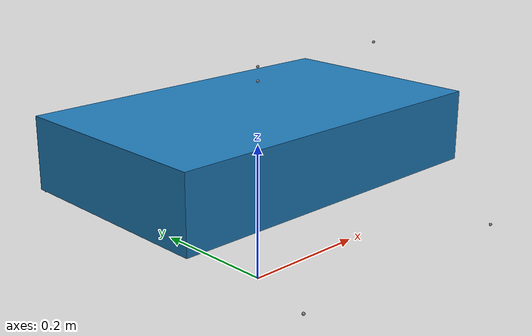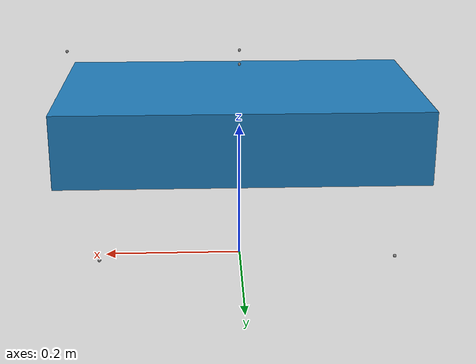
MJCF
<mujoco model="robot-rover">
  <compiler angle="radian" />
  <worldbody>
    <body name="base_footprint">
      <freejoint name="base_freejoint" />
      <body name="base_link" pos="0 0 0.21">
        <inertial pos="0 0 0" mass="4" diaginertia="0.04 0.09 0.1" />
        <geom name="chassis" type="box" size="0.25 0.15 0.05" mass="4" rgba="0.12 0.48 0.72 1" />

        <!-- Component roots attach to these persistent sites. -->
        <site name="front_left_wheel_mount" pos="0.18 0.26 -0.1" euler="-1.5708 0 0" size="0.002" />
        <site name="front_right_wheel_mount" pos="0.18 -0.26 -0.1" euler="1.5708 0 0" size="0.002" />
        <site name="rear_left_wheel_mount" pos="-0.18 0.26 -0.1" euler="-1.5708 0 0" size="0.002" />
        <site name="rear_right_wheel_mount" pos="-0.18 -0.26 -0.1" euler="1.5708 0 0" size="0.002" />
        <site name="imu_mount" pos="0 0 0.08" size="0.002" />
        <site name="gnss_mount" pos="0 0 0.1" size="0.002" />
        <site name="front_camera_mount" pos="0.24 0 0.1" euler="0 0.2618 0" size="0.002" />
        <site name="front_center_tof_mount" pos="0.26 0 0.03" size="0.002" />
      </body>
    </body>
  </worldbody>
</mujoco>
